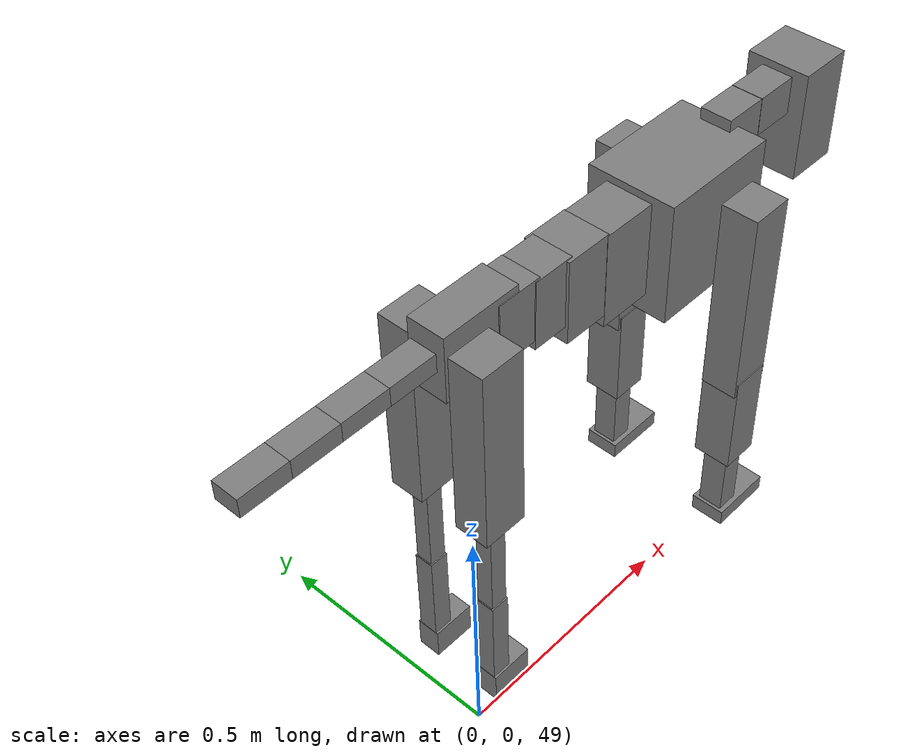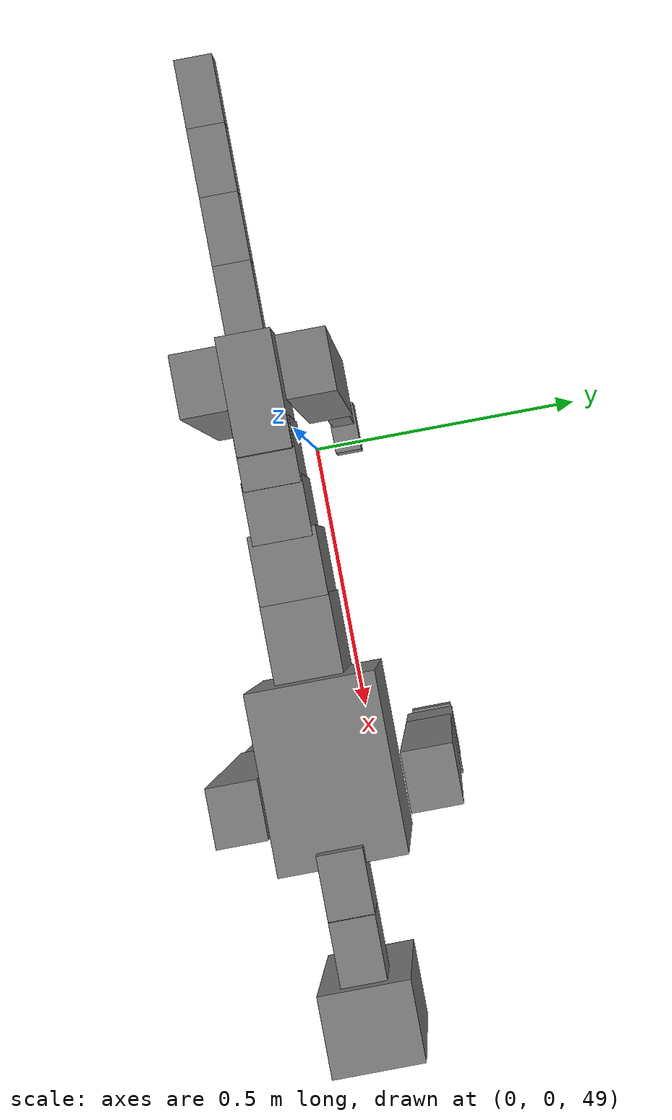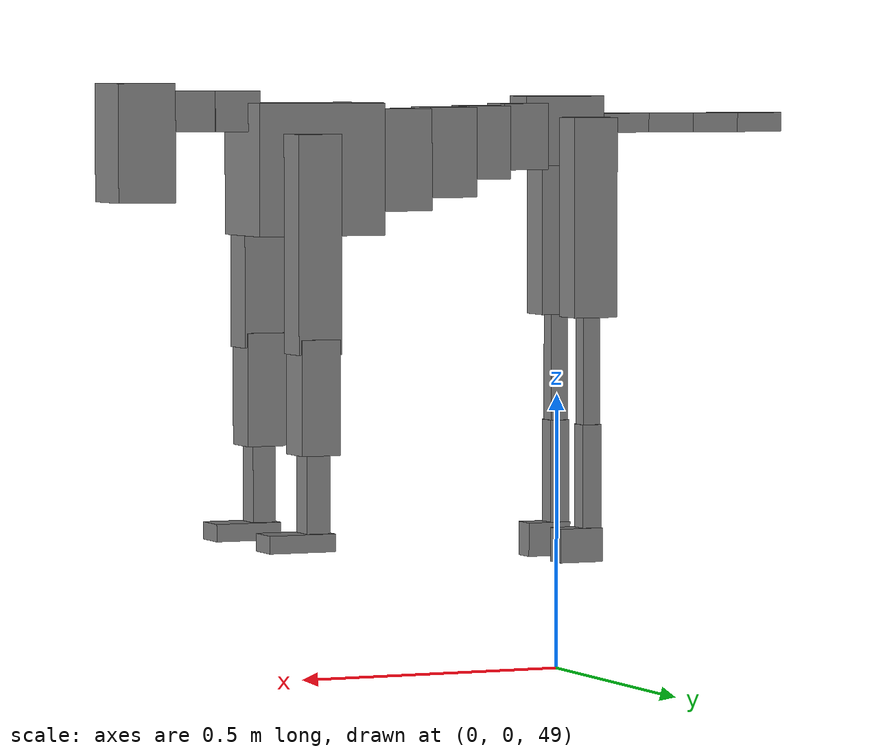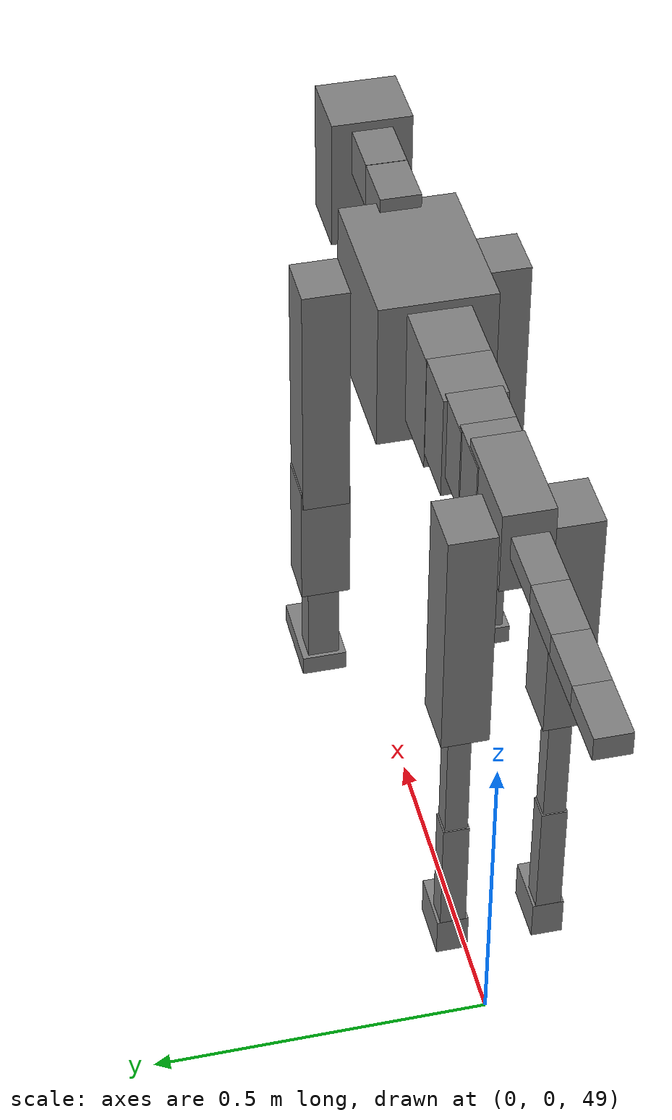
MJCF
<mujoco model="dog">

    <default>
        <joint armature="0.02" stiffness="1" damping="0.2" limited="true"/>
        <geom condim="3" friction="1 0.05 0.05" margin="0.01"/>
        <motor ctrllimited="true" ctrlrange="-1.0 1.0" forcelimited="true" gear="50"/>
    </default>

    <compiler inertiafromgeom="true" angle="radian"/>

    <option timestep="0.016" iterations="50" tolerance="1e-10" solver="Newton" jacobian="dense" cone="pyramidal"/>

    <size nconmax="20000" njmax="60000" nstack="5000000"/>
    <visual>
        <map force="0.1" zfar="30"/>
        <rgba haze="0.15 0.25 0.35 1"/>
        <quality shadowsize="2048"/>
        <global offwidth="800" offheight="800"/>
    </visual>

    <asset>
        <texture type="skybox" builtin="gradient" rgb1="0.3 0.5 0.7" rgb2="0 0 0" width="512" height="512"/>
        <texture name="texplane" type="2d" builtin="checker" rgb1=".2 .3 .4" rgb2=".1 0.15 0.2" width="512" height="512"
                 mark="cross" markrgb=".8 .8 .8"/>
        <texture name="texgeom" type="cube" builtin="flat" mark="cross" width="127" height="1278" rgb1="0.8 0.6 0.4"
                 rgb2="0.8 0.6 0.4" markrgb="1 1 1" random="0.01"/>

        <material name="matplane" reflectance="0.3" texture="texplane" texrepeat="1 1" texuniform="true"/>
        <material name="matgeom" texture="texgeom" texuniform="true" rgba="0.8 0.6 .4 1"/>
    </asset>

    <worldbody>
        <geom name="floor" pos="0 0 0" size="0 0 .25" type="plane" material="matplane" condim="3"/>

        <light directional="false" diffuse=".2 .2 .2" specular="0 0 0" pos="0 0 5" dir="0 0 -1" castshadow="false"/>
        <light mode="targetbodycom" target="torso" directional="false" diffuse=".8 .8 .8" specular="0.3 0.3 0.3"
               pos="0 0 4.0" dir="0 0 -1"/>

        <body name="root" pos="0 0 50">
            <freejoint name="root_1"/>
            <geom type="box" pos="0 0 -0.02" size="0.0774  0.0358  0.063" density="2030"/>

            <body name="spine1" pos="0.054 0 0">
                <joint name="spine1_y" axis="0 1 0" range="0 0.7" limited="true"/>
                <geom type="box" pos="0.02375 0 -0.03" size="0.04375  0.0375  0.05985" density="2030"/>

                <body name="spine2" pos="0.0612 0 0">
                    <joint name="spine2_y" axis="0 1 0" range="-0.15 0.15" limited="true"/>
                    <geom type="box" pos="0.03555  0  -0.04" size="0.04055  0.039  0.06615" density="2030"/>

                    <body name="spine3" pos="0.0730 0 0">
                        <joint name="spine3_y" axis="0 1 0" range="-0.15 0.15" limited="true"/>
                        <geom type="box" pos="0.03555  0  -0.057" size="0.04555  0.0445  0.081" density="2030"/>

                        <body name="spine4" pos="0.0780 0 0">
                            <joint name="spine4_y" axis="0 1 0" range="-0.15 0.15" limited="true"/>
                            <geom type="box" pos="0.05265  0  -0.07" size="0.05265  0.045  0.09135" density="2030"/>

                            <body name="torso" pos="0.1082 0 0">
                                <joint name="torso_y" axis="0 1 0" range="-0.15 0.15" limited="true"/>
                                <geom type="box" pos="0.11925  0  -0.085" size="0.11925  0.085  0.11745"
                                      density="2030"/>

                                <body name="neck1" pos="0.2160  0   0.0180">
                                    <joint name="neck1_y" axis="0 1 0" range="-1.2  -1" limited="true"/>
                                    <geom type="box" pos="0.0423  0  0" size="0.0423  0.03  0.036" density="2325"/>

                                    <body name="neck2" pos="0.0853  0  0">
                                        <joint name="neck2_y" axis="0 1 0" range="0.1  0" limited="true"/>
                                        <geom type="box" pos="0.0423  0  0" size="0.0423  0.03  0.036" density="2325"/>

                                        <body name="head" pos="0.0853  0  0">
                                            <joint name="head_y" axis="0 1 0" range="-0.3  -0.2" limited="true"/>
                                            <geom type="box" pos="0.0531  0  -0.055" size="0.0531  0.06  0.1044"
                                                  density="4030"/>

                                        </body>
                                    </body>
                                </body>

                                <body name="front_shoulder" pos="0.156  0   -0.0480">
                                    <joint name="front_shoulder_y" axis="0 1 0" range="-1 1.5" limited="true"/>
                                    <geom type="box" pos="0 0.13 -0.1667" size="0.0408  0.0349  0.1933" density="1158"/>
                                    <geom type="box" pos="0 -0.13 -0.1667" size="0.0408  0.0349  0.1933"
                                          density="1158"/>

                                    <body name="front_elbow" pos="0  0  -0.3333">
                                        <joint name="front_elbow_y" axis="0 1 0" range="-2 0" limited="true"/>
                                        <geom type="box" pos="0 0.13 -0.1020" size="0.0362  0.0370  0.1020"
                                              density="1081"/>
                                        <geom type="box" pos="0 -0.13 -0.1020" size="0.0362  0.0370  0.1020"
                                              density="1081"/>

                                        <body name="front_wrist" pos="0  0  -0.2040">
                                            <joint name="front_wrist_y" axis="0 1 0" range="-0.2 0" limited="true"/>
                                            <geom type="box" pos="0 0.13 -0.0765" size="0.0217  0.0241  0.0897"
                                                  density="1664"/>
                                            <geom type="box" pos="0 -0.13 -0.0765" size="0.0217  0.0241  0.0897"
                                                  density="1664"/>

                                            <body name="front_finger_end" pos="0  0  -0.1530">
                                                <joint name="front_finger_y" axis="0 1 0" range="-0.4 1"
                                                       limited="true"/>
                                                <geom type="box" pos="0.0338  0.13  -0.0008"
                                                      size="0.0619  0.0338  0.0158" density="1515"/>
                                                <geom type="box" pos="0.0338  -0.13  -0.0008"
                                                      size="0.0619  0.0338  0.0158" density="1515"/>

                                            </body>

                                        </body>
                                    </body>
                                </body>

                            </body>
                        </body>
                    </body>
                </body>
            </body>

            <body name="back_hip" pos="-0.03 0 -0.018">
                <joint name="back_hip_y" axis="0 1 0" range="-1.5 0.3" limited="true"/>
                <geom type="box" pos="0 0.07 -0.1576" size="0.0424  0.0332  0.1804" density="1154"/>
                <geom type="box" pos="0 -0.07 -0.1576" size="0.0424  0.0332  0.1804" density="1154"/>

                <body name="back_knee" pos="0  0  -0.3152">
                    <joint name="back_knee_y" axis="0 1 0" range="0 2.8" limited="true"/>
                    <geom type="box" pos="0 0.07 -0.1141" size="0.0165  0.0162  0.1297" density="1227"/>
                    <geom type="box" pos="0 -0.07 -0.1141" size="0.0165  0.0162  0.1297" density="1227"/>

                    <body name="back_ankle" pos="0  0  -0.2282">
                        <joint name="back_ankle_y" axis="0 1 0" range="-2.2 0" limited="true"/>
                        <geom type="box" pos="0 0.07 -0.0955" size="0.0185  0.0185  0.1067" density="1284"/>
                        <geom type="box" pos="0 -0.07 -0.0955" size="0.0185  0.0185  0.1067" density="1284"/>

                        <body name="back_toe_end" pos="0  0  -0.1910">
                            <joint name="back_toe_y" axis="0 1 0" range="-0.4 1" limited="true"/>
                            <geom type="box" pos="0.0226  0.07  -0.0157" size="0.0414  0.0226  0.0307" density="1515"/>
                            <geom type="box" pos="0.0226  -0.07  -0.0157" size="0.0414  0.0226  0.0307" density="1515"/>

                        </body>
                    </body>
                </body>
            </body>

            <body name="tail1" pos="-0.074 0 -0.006">
                <joint name="tail1_y" axis="0 1 0" range="-0.2 0.2" limited="true"/>
                <geom type="box" pos="-0.0536  0  0" size="0.045  0.025  0.0175" density="1587"/>

                <body name="tail2" pos="-0.09 0 0">
                    <joint name="tail2_y" axis="0 1 0" range="-0.2 0.2" limited="true"/>
                    <geom type="box" pos="-0.0536  0  0" size="0.045  0.025  0.0175" density="1587"/>

                    <body name="tail3" pos="-0.09 0 0">
                        <joint name="tail3_y" axis="0 1 0" range="-0.2 0.2" limited="true"/>
                        <geom type="box" pos="-0.0536  0  0" size="0.045  0.025  0.0175" density="1587"/>

                        <body name="tail4" pos="-0.09 0 0">
                            <joint name="tail4_y" axis="0 1 0" range="-0.2 0.2" limited="true"/>
                            <geom type="box" pos="-0.0536  0  0" size="0.045  0.025  0.0175" density="1587"/>

                        </body>
                    </body>
                </body>
            </body>
        </body>
    </worldbody>

    <actuator>
        <motor joint="spine1_y" forcerange="-150 150     "/>
        <motor joint="spine2_y" forcerange="-150 150     "/>
        <motor joint="spine3_y" forcerange="-150 150     "/>
        <motor joint="spine4_y" forcerange="-150 150     "/>
        <motor joint="torso_y" forcerange="-150 150     "/>
        <motor joint="neck1_y" forcerange="-100 100       "/>
        <motor joint="neck2_y" forcerange="-100 100       "/>
        <motor joint="head_y" forcerange="-150 150       "/>
        <motor joint="front_shoulder_y" forcerange="-143.78 188.68"/>
        <motor joint="front_elbow_y" forcerange="-176.40 192.97"/>
        <motor joint="front_wrist_y" forcerange="-141.37 51.23"/>
        <motor joint="front_finger_y" forcerange="-88.79 51.42"/>
        <motor joint="back_hip_y" forcerange="-396.27 246.67"/>
        <motor joint="back_knee_y" forcerange="-203.79 232.19"/>
        <motor joint="back_angle_y" forcerange="-114.03 82.19"/>
        <motor joint="back_toe_y" forcerange="-71.94 28.93"/>
        <motor joint="tail1_y" forcerange="-50 50     "/>
        <motor joint="tail2_y" forcerange="-50 50     "/>
        <motor joint="tail3_y" forcerange="-50 50     "/>
        <motor joint="tail4_y" forcerange="-50 50     "/>
    </actuator>
</mujoco>
